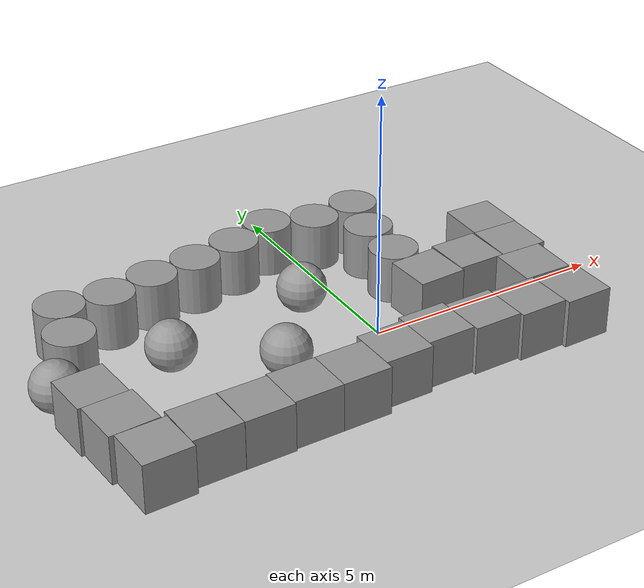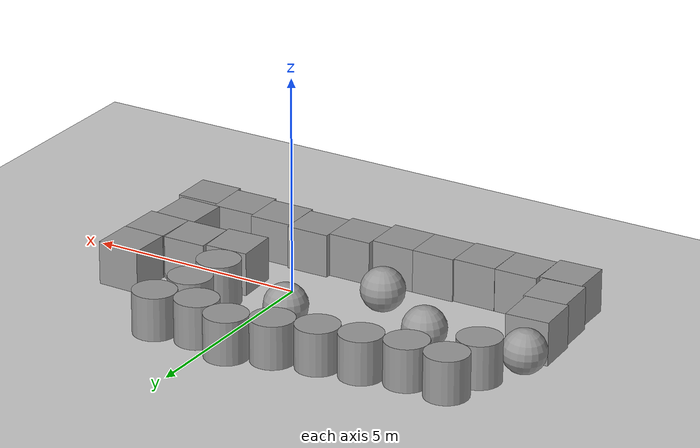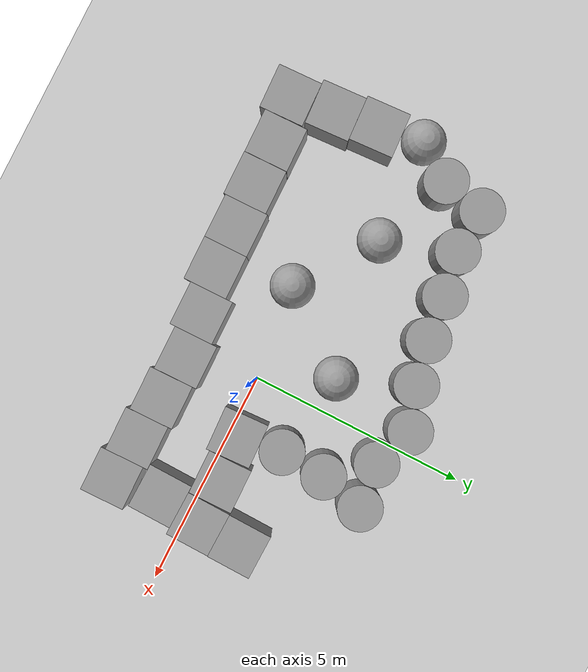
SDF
<sdf version="1.7">
 <world name="default">
  <light name="sun" type="directional">
   <pose>0 0 10 0 -0 0</pose>
   <diffuse>0.8 0.8 0.8 1</diffuse>
   <specular>0.2 0.2 0.2 1</specular>
   <attenuation>
    <range>1000</range>
    <constant>0.9</constant>
    <linear>0.01</linear>
    <quadratic>0.001</quadratic>
   </attenuation>
   <direction>-0.5 0.1 -0.9</direction>
   <spot><inner_angle>0</inner_angle><outer_angle>0</outer_angle><falloff>0</falloff></spot>
  </light>
  <model name="ground_plane">
   <static>1</static>
   <link name="link">
    <collision name="collision">
     <geometry><plane><normal>0 0 1</normal><size>100 100</size></plane></geometry>
     <surface>
      <contact><collide_bitmask>65535</collide_bitmask></contact>
      <friction><ode><mu>100</mu><mu2>50</mu2></ode></friction>
     </surface>
    </collision>
    <visual name="visual">
     <cast_shadows>0</cast_shadows>
     <geometry><plane><normal>0 0 1</normal><size>100 100</size></plane></geometry>
     <material>
      <script><uri>file://media/materials/scripts/gazebo.material</uri><name>Gazebo/Grey</name></script>
     </material>
    </visual>
   </link>
  </model>
  <gravity>0 0 -9.8</gravity>
  <magnetic_field>6e-06 2.3e-05 -4.2e-05</magnetic_field>
  <atmosphere type="adiabatic"/>
  <physics type="ode">
   <max_step_size>0.001</max_step_size>
   <real_time_factor>1</real_time_factor>
   <real_time_update_rate>1000</real_time_update_rate>
  </physics>
  <scene><ambient>0.4 0.4 0.4 1</ambient><background>0.7 0.7 0.7 1</background><shadows>1</shadows></scene>
  <audio><device>default</device></audio>
  <spherical_coordinates>
   <surface_model>EARTH_WGS84</surface_model>
   <latitude_deg>0</latitude_deg>
   <longitude_deg>0</longitude_deg>
   <elevation>0</elevation>
   <heading_deg>0</heading_deg>
  </spherical_coordinates>
  <model name="unit_box">
   <pose>0.26467 -1.53915 0.499995 0 1e-05 0.013559</pose>
   <link name="link">
    <inertial>
     <mass>1</mass>
     <inertia>
      <ixx>0.166667</ixx>
      <ixy>0</ixy>
      <ixz>0</ixz>
      <iyy>0.166667</iyy>
      <iyz>0</iyz>
      <izz>0.166667</izz>
     </inertia>
    </inertial>
    <collision name="collision"><geometry><box><size>1 1 1</size></box></geometry></collision>
    <visual name="visual">
     <geometry><box><size>1 1 1</size></box></geometry>
     <material>
      <script><name>Gazebo/Grey</name><uri>file://media/materials/scripts/gazebo.material</uri></script>
     </material>
    </visual>
   </link>
  </model>
  <model name="unit_box_0">
   <pose>1.2675 -1.60932 0.499995 0 -1e-05 0.016918</pose>
   <link name="link">
    <inertial>
     <mass>1</mass>
     <inertia>
      <ixx>0.166667</ixx>
      <ixy>0</ixy>
      <ixz>0</ixz>
      <iyy>0.166667</iyy>
      <iyz>0</iyz>
      <izz>0.166667</izz>
     </inertia>
    </inertial>
    <collision name="collision"><geometry><box><size>1 1 1</size></box></geometry></collision>
    <visual name="visual">
     <geometry><box><size>1 1 1</size></box></geometry>
     <material>
      <script><name>Gazebo/Grey</name><uri>file://media/materials/scripts/gazebo.material</uri></script>
     </material>
    </visual>
   </link>
  </model>
  <model name="unit_box_1">
   <pose>2.26919 -1.67984 0.499995 -1e-05 0 0.017448</pose>
   <link name="link">
    <inertial>
     <mass>1</mass>
     <inertia>
      <ixx>0.166667</ixx>
      <ixy>0</ixy>
      <ixz>0</ixz>
      <iyy>0.166667</iyy>
      <iyz>0</iyz>
      <izz>0.166667</izz>
     </inertia>
    </inertial>
    <collision name="collision"><geometry><box><size>1 1 1</size></box></geometry></collision>
    <visual name="visual">
     <geometry><box><size>1 1 1</size></box></geometry>
     <material>
      <script><name>Gazebo/Grey</name><uri>file://media/materials/scripts/gazebo.material</uri></script>
     </material>
    </visual>
   </link>
  </model>
  <model name="unit_box_2">
   <pose>3.27088 -1.76475 0.5 0 -0 0.01752</pose>
   <link name="link">
    <inertial>
     <mass>1</mass>
     <inertia>
      <ixx>0.166667</ixx>
      <ixy>0</ixy>
      <ixz>0</ixz>
      <iyy>0.166667</iyy>
      <iyz>0</iyz>
      <izz>0.166667</izz>
     </inertia>
    </inertial>
    <collision name="collision"><geometry><box><size>1 1 1</size></box></geometry></collision>
    <visual name="visual">
     <geometry><box><size>1 1 1</size></box></geometry>
     <material>
      <script><name>Gazebo/Grey</name><uri>file://media/materials/scripts/gazebo.material</uri></script>
     </material>
    </visual>
   </link>
  </model>
  <model name="unit_box_3">
   <pose>3.14189 -0.676434 0.499995 -0 -1e-05 -0.020309</pose>
   <link name="link">
    <inertial>
     <mass>1</mass>
     <inertia>
      <ixx>0.166667</ixx>
      <ixy>0</ixy>
      <ixz>0</ixz>
      <iyy>0.166667</iyy>
      <iyz>0</iyz>
      <izz>0.166667</izz>
     </inertia>
    </inertial>
    <collision name="collision"><geometry><box><size>1 1 1</size></box></geometry></collision>
    <visual name="visual">
     <geometry><box><size>1 1 1</size></box></geometry>
     <material>
      <script><name>Gazebo/Grey</name><uri>file://media/materials/scripts/gazebo.material</uri></script>
     </material>
    </visual>
   </link>
  </model>
  <model name="unit_box_4">
   <pose>3.3048 0.320497 0.5 0 0 -0.020372</pose>
   <link name="link">
    <inertial>
     <mass>1</mass>
     <inertia>
      <ixx>0.166667</ixx>
      <ixy>0</ixy>
      <ixz>0</ixz>
      <iyy>0.166667</iyy>
      <iyz>0</iyz>
      <izz>0.166667</izz>
     </inertia>
    </inertial>
    <collision name="collision"><geometry><box><size>1 1 1</size></box></geometry></collision>
    <visual name="visual">
     <geometry><box><size>1 1 1</size></box></geometry>
     <material>
      <script><name>Gazebo/Grey</name><uri>file://media/materials/scripts/gazebo.material</uri></script>
     </material>
    </visual>
   </link>
  </model>
  <model name="unit_box_5">
   <pose>3.33285 1.32015 0.5 0 0 -0.020409</pose>
   <link name="link">
    <inertial>
     <mass>1</mass>
     <inertia>
      <ixx>0.166667</ixx>
      <ixy>0</ixy>
      <ixz>0</ixz>
      <iyy>0.166667</iyy>
      <iyz>0</iyz>
      <izz>0.166667</izz>
     </inertia>
    </inertial>
    <collision name="collision"><geometry><box><size>1 1 1</size></box></geometry></collision>
    <visual name="visual">
     <geometry><box><size>1 1 1</size></box></geometry>
     <material>
      <script><name>Gazebo/Grey</name><uri>file://media/materials/scripts/gazebo.material</uri></script>
     </material>
    </visual>
   </link>
  </model>
  <model name="unit_box_6">
   <pose>2.28636 0.328235 0.499995 1e-05 -0 0.01546</pose>
   <link name="link">
    <inertial>
     <mass>1</mass>
     <inertia>
      <ixx>0.166667</ixx>
      <ixy>0</ixy>
      <ixz>0</ixz>
      <iyy>0.166667</iyy>
      <iyz>0</iyz>
      <izz>0.166667</izz>
     </inertia>
    </inertial>
    <collision name="collision"><geometry><box><size>1 1 1</size></box></geometry></collision>
    <visual name="visual">
     <geometry><box><size>1 1 1</size></box></geometry>
     <material>
      <script><name>Gazebo/Grey</name><uri>file://media/materials/scripts/gazebo.material</uri></script>
     </material>
    </visual>
   </link>
  </model>
  <model name="unit_box_7">
   <pose>1.27428 0.22 0.499995 0 -1e-05 0.04661</pose>
   <link name="link">
    <inertial>
     <mass>1</mass>
     <inertia>
      <ixx>0.166667</ixx>
      <ixy>0</ixy>
      <ixz>0</ixz>
      <iyy>0.166667</iyy>
      <iyz>0</iyz>
      <izz>0.166667</izz>
     </inertia>
    </inertial>
    <collision name="collision"><geometry><box><size>1 1 1</size></box></geometry></collision>
    <visual name="visual">
     <geometry><box><size>1 1 1</size></box></geometry>
     <material>
      <script><name>Gazebo/Grey</name><uri>file://media/materials/scripts/gazebo.material</uri></script>
     </material>
    </visual>
   </link>
  </model>
  <model name="unit_cylinder">
   <pose>1.1194 1.21401 0.499994 -4e-06 -3e-06 -0.024569</pose>
   <link name="link">
    <inertial>
     <mass>1</mass>
     <inertia><ixx>0.145833</ixx><ixy>0</ixy><ixz>0</ixz><iyy>0.145833</iyy><iyz>0</iyz><izz>0.125</izz></inertia>
    </inertial>
    <collision name="collision">
     <geometry><cylinder><radius>0.5</radius><length>1</length></cylinder></geometry>
    </collision>
    <visual name="visual">
     <geometry><cylinder><radius>0.5</radius><length>1</length></cylinder></geometry>
     <material>
      <script><name>Gazebo/Grey</name><uri>file://media/materials/scripts/gazebo.material</uri></script>
     </material>
    </visual>
   </link>
  </model>
  <model name="unit_cylinder_0">
   <pose>1.1807 2.24389 0.499991 1e-06 -1e-06 -0.009989</pose>
   <link name="link">
    <inertial>
     <mass>1</mass>
     <inertia><ixx>0.145833</ixx><ixy>0</ixy><ixz>0</ixz><iyy>0.145833</iyy><iyz>0</iyz><izz>0.125</izz></inertia>
    </inertial>
    <collision name="collision">
     <geometry><cylinder><radius>0.5</radius><length>1</length></cylinder></geometry>
    </collision>
    <visual name="visual">
     <geometry><cylinder><radius>0.5</radius><length>1</length></cylinder></geometry>
     <material>
      <script><name>Gazebo/Grey</name><uri>file://media/materials/scripts/gazebo.material</uri></script>
     </material>
    </visual>
   </link>
  </model>
  <model name="unit_cylinder_1">
   <pose>1.43084 3.24581 0.499992 -3e-06 -4e-06 0.00291</pose>
   <link name="link">
    <inertial>
     <mass>1</mass>
     <inertia><ixx>0.145833</ixx><ixy>0</ixy><ixz>0</ixz><iyy>0.145833</iyy><iyz>0</iyz><izz>0.125</izz></inertia>
    </inertial>
    <collision name="collision">
     <geometry><cylinder><radius>0.5</radius><length>1</length></cylinder></geometry>
    </collision>
    <visual name="visual">
     <geometry><cylinder><radius>0.5</radius><length>1</length></cylinder></geometry>
     <material>
      <script><name>Gazebo/Grey</name><uri>file://media/materials/scripts/gazebo.material</uri></script>
     </material>
    </visual>
   </link>
  </model>
  <model name="unit_box_8">
   <pose>-0.733617 -1.67433 0.499995 0 1e-05 0.013531</pose>
   <link name="link">
    <inertial>
     <mass>1</mass>
     <inertia>
      <ixx>0.166667</ixx>
      <ixy>0</ixy>
      <ixz>0</ixz>
      <iyy>0.166667</iyy>
      <iyz>0</iyz>
      <izz>0.166667</izz>
     </inertia>
    </inertial>
    <collision name="collision"><geometry><box><size>1 1 1</size></box></geometry></collision>
    <visual name="visual">
     <geometry><box><size>1 1 1</size></box></geometry>
     <material>
      <script><name>Gazebo/Grey</name><uri>file://media/materials/scripts/gazebo.material</uri></script>
     </material>
    </visual>
   </link>
  </model>
  <model name="unit_box_9">
   <pose>-2.73183 -1.86522 0.5 0 -0 0.012982</pose>
   <link name="link">
    <inertial>
     <mass>1</mass>
     <inertia>
      <ixx>0.166667</ixx>
      <ixy>0</ixy>
      <ixz>0</ixz>
      <iyy>0.166667</iyy>
      <iyz>0</iyz>
      <izz>0.166667</izz>
     </inertia>
    </inertial>
    <collision name="collision"><geometry><box><size>1 1 1</size></box></geometry></collision>
    <visual name="visual">
     <geometry><box><size>1 1 1</size></box></geometry>
     <material>
      <script><name>Gazebo/Grey</name><uri>file://media/materials/scripts/gazebo.material</uri></script>
     </material>
    </visual>
   </link>
  </model>
  <model name="unit_box_10">
   <pose>-1.73187 -1.8526 0.499995 -1e-05 0 0.013023</pose>
   <link name="link">
    <inertial>
     <mass>1</mass>
     <inertia>
      <ixx>0.166667</ixx>
      <ixy>0</ixy>
      <ixz>0</ixz>
      <iyy>0.166667</iyy>
      <iyz>0</iyz>
      <izz>0.166667</izz>
     </inertia>
    </inertial>
    <collision name="collision"><geometry><box><size>1 1 1</size></box></geometry></collision>
    <visual name="visual">
     <geometry><box><size>1 1 1</size></box></geometry>
     <material>
      <script><name>Gazebo/Grey</name><uri>file://media/materials/scripts/gazebo.material</uri></script>
     </material>
    </visual>
   </link>
  </model>
  <model name="unit_sphere">
   <pose>-0.799204 1.54706 0.5 0 -0 0</pose>
   <link name="link">
    <inertial>
     <mass>1</mass>
     <inertia><ixx>0.1</ixx><ixy>0</ixy><ixz>0</ixz><iyy>0.1</iyy><iyz>0</iyz><izz>0.1</izz></inertia>
    </inertial>
    <collision name="collision"><geometry><sphere><radius>0.5</radius></sphere></geometry></collision>
    <visual name="visual">
     <geometry><sphere><radius>0.5</radius></sphere></geometry>
     <material>
      <script><name>Gazebo/Grey</name><uri>file://media/materials/scripts/gazebo.material</uri></script>
     </material>
    </visual>
   </link>
  </model>
  <model name="unit_sphere_0">
   <pose>-2.16282 -0.223291 0.5 0 -0 0</pose>
   <link name="link">
    <inertial>
     <mass>1</mass>
     <inertia><ixx>0.1</ixx><ixy>0</ixy><ixz>0</ixz><iyy>0.1</iyy><iyz>0</iyz><izz>0.1</izz></inertia>
    </inertial>
    <collision name="collision"><geometry><sphere><radius>0.5</radius></sphere></geometry></collision>
    <visual name="visual">
     <geometry><sphere><radius>0.5</radius></sphere></geometry>
     <material>
      <script><name>Gazebo/Grey</name><uri>file://media/materials/scripts/gazebo.material</uri></script>
     </material>
    </visual>
   </link>
  </model>
  <model name="unit_cylinder_2">
   <pose>0.435563 3.13306 0.499998 3e-06 -3e-06 -0.028716</pose>
   <link name="link">
    <inertial>
     <mass>1</mass>
     <inertia><ixx>0.145833</ixx><ixy>0</ixy><ixz>0</ixz><iyy>0.145833</iyy><iyz>0</iyz><izz>0.125</izz></inertia>
    </inertial>
    <collision name="collision">
     <geometry><cylinder><radius>0.5</radius><length>1</length></cylinder></geometry>
    </collision>
    <visual name="visual">
     <geometry><cylinder><radius>0.5</radius><length>1</length></cylinder></geometry>
     <material>
      <script><name>Gazebo/Grey</name><uri>file://media/materials/scripts/gazebo.material</uri></script>
     </material>
    </visual>
   </link>
  </model>
  <model name="unit_cylinder_3">
   <pose>-0.510742 3.45636 0.499995 4e-06 3e-06 0.042191</pose>
   <link name="link">
    <inertial>
     <mass>1</mass>
     <inertia><ixx>0.145833</ixx><ixy>0</ixy><ixz>0</ixz><iyy>0.145833</iyy><iyz>0</iyz><izz>0.125</izz></inertia>
    </inertial>
    <collision name="collision">
     <geometry><cylinder><radius>0.5</radius><length>1</length></cylinder></geometry>
    </collision>
    <visual name="visual">
     <geometry><cylinder><radius>0.5</radius><length>1</length></cylinder></geometry>
     <material>
      <script><name>Gazebo/Grey</name><uri>file://media/materials/scripts/gazebo.material</uri></script>
     </material>
    </visual>
   </link>
  </model>
  <model name="unit_cylinder_4">
   <pose>-1.45178 3.11786 0.499998 -1e-06 0 0.196741</pose>
   <link name="link">
    <inertial>
     <mass>1</mass>
     <inertia><ixx>0.145833</ixx><ixy>0</ixy><ixz>0</ixz><iyy>0.145833</iyy><iyz>0</iyz><izz>0.125</izz></inertia>
    </inertial>
    <collision name="collision">
     <geometry><cylinder><radius>0.5</radius><length>1</length></cylinder></geometry>
    </collision>
    <visual name="visual">
     <geometry><cylinder><radius>0.5</radius><length>1</length></cylinder></geometry>
     <material>
      <script><name>Gazebo/Grey</name><uri>file://media/materials/scripts/gazebo.material</uri></script>
     </material>
    </visual>
   </link>
  </model>
  <model name="unit_cylinder_5">
   <pose>-2.42931 2.90706 0.499996 3e-06 -2e-06 -0.059525</pose>
   <link name="link">
    <inertial>
     <mass>1</mass>
     <inertia><ixx>0.145833</ixx><ixy>0</ixy><ixz>0</ixz><iyy>0.145833</iyy><iyz>0</iyz><izz>0.125</izz></inertia>
    </inertial>
    <collision name="collision">
     <geometry><cylinder><radius>0.5</radius><length>1</length></cylinder></geometry>
    </collision>
    <visual name="visual">
     <geometry><cylinder><radius>0.5</radius><length>1</length></cylinder></geometry>
     <material>
      <script><name>Gazebo/Grey</name><uri>file://media/materials/scripts/gazebo.material</uri></script>
     </material>
    </visual>
   </link>
  </model>
  <model name="unit_box_11">
   <pose>-3.73115 -1.92422 0.5 0 -0 0.012983</pose>
   <link name="link">
    <inertial>
     <mass>1</mass>
     <inertia>
      <ixx>0.166667</ixx>
      <ixy>0</ixy>
      <ixz>0</ixz>
      <iyy>0.166667</iyy>
      <iyz>0</iyz>
      <izz>0.166667</izz>
     </inertia>
    </inertial>
    <collision name="collision"><geometry><box><size>1 1 1</size></box></geometry></collision>
    <visual name="visual">
     <geometry><box><size>1 1 1</size></box></geometry>
     <material>
      <script><name>Gazebo/Grey</name><uri>file://media/materials/scripts/gazebo.material</uri></script>
     </material>
    </visual>
   </link>
  </model>
  <model name="unit_box_12">
   <pose>-4.73488 -1.93704 0.499995 1e-05 0 0.020477</pose>
   <link name="link">
    <inertial>
     <mass>1</mass>
     <inertia>
      <ixx>0.166667</ixx>
      <ixy>0</ixy>
      <ixz>0</ixz>
      <iyy>0.166667</iyy>
      <iyz>0</iyz>
      <izz>0.166667</izz>
     </inertia>
    </inertial>
    <collision name="collision"><geometry><box><size>1 1 1</size></box></geometry></collision>
    <visual name="visual">
     <geometry><box><size>1 1 1</size></box></geometry>
     <material>
      <script><name>Gazebo/Grey</name><uri>file://media/materials/scripts/gazebo.material</uri></script>
     </material>
    </visual>
   </link>
  </model>
  <model name="unit_box_13">
   <pose>-5.73776 -2.09679 0.499995 -1e-05 -0 0.036726</pose>
   <link name="link">
    <inertial>
     <mass>1</mass>
     <inertia>
      <ixx>0.166667</ixx>
      <ixy>0</ixy>
      <ixz>0</ixz>
      <iyy>0.166667</iyy>
      <iyz>0</iyz>
      <izz>0.166667</izz>
     </inertia>
    </inertial>
    <collision name="collision"><geometry><box><size>1 1 1</size></box></geometry></collision>
    <visual name="visual">
     <geometry><box><size>1 1 1</size></box></geometry>
     <material>
      <script><name>Gazebo/Grey</name><uri>file://media/materials/scripts/gazebo.material</uri></script>
     </material>
    </visual>
   </link>
  </model>
  <model name="unit_box_14">
   <pose>-5.88473 -1.09254 0.499995 -1e-05 -0 0.059406</pose>
   <link name="link">
    <inertial>
     <mass>1</mass>
     <inertia>
      <ixx>0.166667</ixx>
      <ixy>0</ixy>
      <ixz>0</ixz>
      <iyy>0.166667</iyy>
      <iyz>0</iyz>
      <izz>0.166667</izz>
     </inertia>
    </inertial>
    <collision name="collision"><geometry><box><size>1 1 1</size></box></geometry></collision>
    <visual name="visual">
     <geometry><box><size>1 1 1</size></box></geometry>
     <material>
      <script><name>Gazebo/Grey</name><uri>file://media/materials/scripts/gazebo.material</uri></script>
     </material>
    </visual>
   </link>
  </model>
  <model name="unit_box_15">
   <pose>-6.00382 -0.097744 0.499995 1e-05 -0 0.059669</pose>
   <link name="link">
    <inertial>
     <mass>1</mass>
     <inertia>
      <ixx>0.166667</ixx>
      <ixy>0</ixy>
      <ixz>0</ixz>
      <iyy>0.166667</iyy>
      <iyz>0</iyz>
      <izz>0.166667</izz>
     </inertia>
    </inertial>
    <collision name="collision"><geometry><box><size>1 1 1</size></box></geometry></collision>
    <visual name="visual">
     <geometry><box><size>1 1 1</size></box></geometry>
     <material>
      <script><name>Gazebo/Grey</name><uri>file://media/materials/scripts/gazebo.material</uri></script>
     </material>
    </visual>
   </link>
  </model>
  <model name="unit_cylinder_6">
   <pose>-3.42257 2.79097 0.499992 -3e-06 -4e-06 0.003777</pose>
   <link name="link">
    <inertial>
     <mass>1</mass>
     <inertia><ixx>0.145833</ixx><ixy>0</ixy><ixz>0</ixz><iyy>0.145833</iyy><iyz>0</iyz><izz>0.125</izz></inertia>
    </inertial>
    <collision name="collision">
     <geometry><cylinder><radius>0.5</radius><length>1</length></cylinder></geometry>
    </collision>
    <visual name="visual">
     <geometry><cylinder><radius>0.5</radius><length>1</length></cylinder></geometry>
     <material>
      <script><name>Gazebo/Grey</name><uri>file://media/materials/scripts/gazebo.material</uri></script>
     </material>
    </visual>
   </link>
  </model>
  <model name="unit_cylinder_7">
   <pose>-4.40431 2.59717 0.499992 1e-06 -1e-06 0.009807</pose>
   <link name="link">
    <inertial>
     <mass>1</mass>
     <inertia><ixx>0.145833</ixx><ixy>0</ixy><ixz>0</ixz><iyy>0.145833</iyy><iyz>0</iyz><izz>0.125</izz></inertia>
    </inertial>
    <collision name="collision">
     <geometry><cylinder><radius>0.5</radius><length>1</length></cylinder></geometry>
    </collision>
    <visual name="visual">
     <geometry><cylinder><radius>0.5</radius><length>1</length></cylinder></geometry>
     <material>
      <script><name>Gazebo/Grey</name><uri>file://media/materials/scripts/gazebo.material</uri></script>
     </material>
    </visual>
   </link>
  </model>
  <model name="unit_cylinder_8">
   <pose>-5.40217 2.66814 0.499991 0 -0 0.03846</pose>
   <link name="link">
    <inertial>
     <mass>1</mass>
     <inertia><ixx>0.145833</ixx><ixy>0</ixy><ixz>0</ixz><iyy>0.145833</iyy><iyz>0</iyz><izz>0.125</izz></inertia>
    </inertial>
    <collision name="collision">
     <geometry><cylinder><radius>0.5</radius><length>1</length></cylinder></geometry>
    </collision>
    <visual name="visual">
     <geometry><cylinder><radius>0.5</radius><length>1</length></cylinder></geometry>
     <material>
      <script><name>Gazebo/Grey</name><uri>file://media/materials/scripts/gazebo.material</uri></script>
     </material>
    </visual>
   </link>
  </model>
  <model name="unit_cylinder_9">
   <pose>-5.62285 1.69279 0.499994 -3e-06 -4e-06 -0.124902</pose>
   <link name="link">
    <inertial>
     <mass>1</mass>
     <inertia><ixx>0.145833</ixx><ixy>0</ixy><ixz>0</ixz><iyy>0.145833</iyy><iyz>0</iyz><izz>0.125</izz></inertia>
    </inertial>
    <collision name="collision">
     <geometry><cylinder><radius>0.5</radius><length>1</length></cylinder></geometry>
    </collision>
    <visual name="visual">
     <geometry><cylinder><radius>0.5</radius><length>1</length></cylinder></geometry>
     <material>
      <script><name>Gazebo/Grey</name><uri>file://media/materials/scripts/gazebo.material</uri></script>
     </material>
    </visual>
   </link>
  </model>
  <model name="unit_sphere_1">
   <pose>-6.25773 0.896299 0.5 -0.000832 -0.08105 -0.127813</pose>
   <link name="link">
    <inertial>
     <mass>1</mass>
     <inertia><ixx>0.1</ixx><ixy>0</ixy><ixz>0</ixz><iyy>0.1</iyy><iyz>0</iyz><izz>0.1</izz></inertia>
    </inertial>
    <collision name="collision"><geometry><sphere><radius>0.5</radius></sphere></geometry></collision>
    <visual name="visual">
     <geometry><sphere><radius>0.5</radius></sphere></geometry>
     <material>
      <script><name>Gazebo/Grey</name><uri>file://media/materials/scripts/gazebo.material</uri></script>
     </material>
    </visual>
   </link>
  </model>
  <model name="unit_sphere_2">
   <pose>-3.91635 1.01656 0.5 0 -0 0</pose>
   <link name="link">
    <inertial>
     <mass>1</mass>
     <inertia><ixx>0.1</ixx><ixy>0</ixy><ixz>0</ixz><iyy>0.1</iyy><iyz>0</iyz><izz>0.1</izz></inertia>
    </inertial>
    <collision name="collision"><geometry><sphere><radius>0.5</radius></sphere></geometry></collision>
    <visual name="visual">
     <geometry><sphere><radius>0.5</radius></sphere></geometry>
     <material>
      <script><name>Gazebo/Grey</name><uri>file://media/materials/scripts/gazebo.material</uri></script>
     </material>
    </visual>
   </link>
  </model>
 </world>
</sdf>
